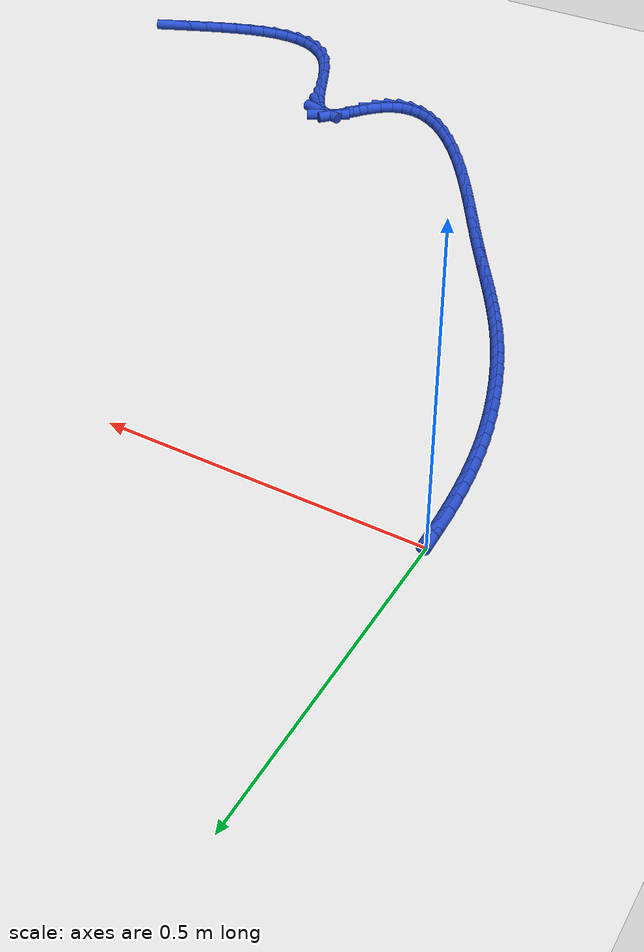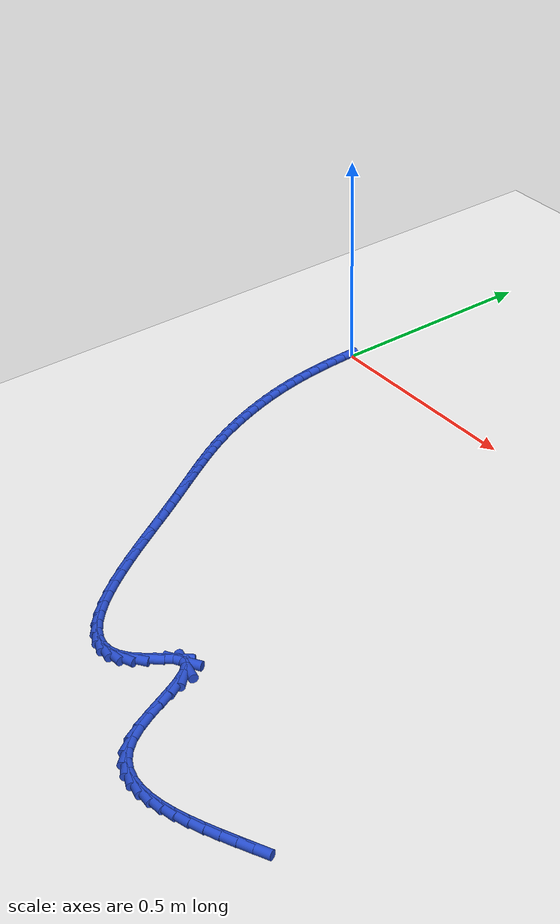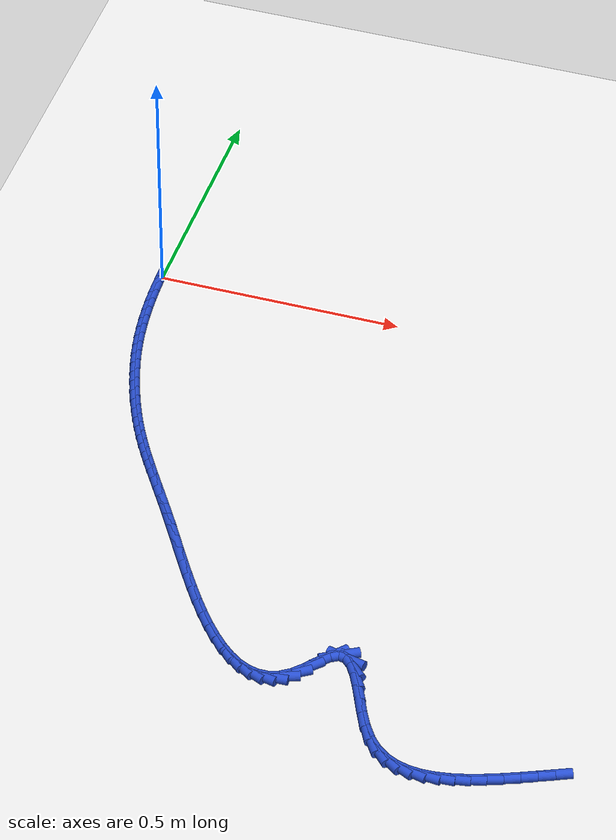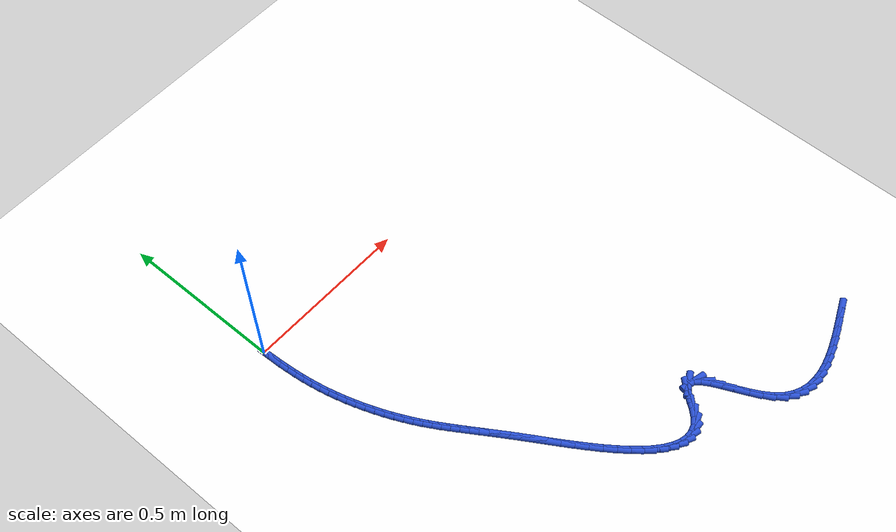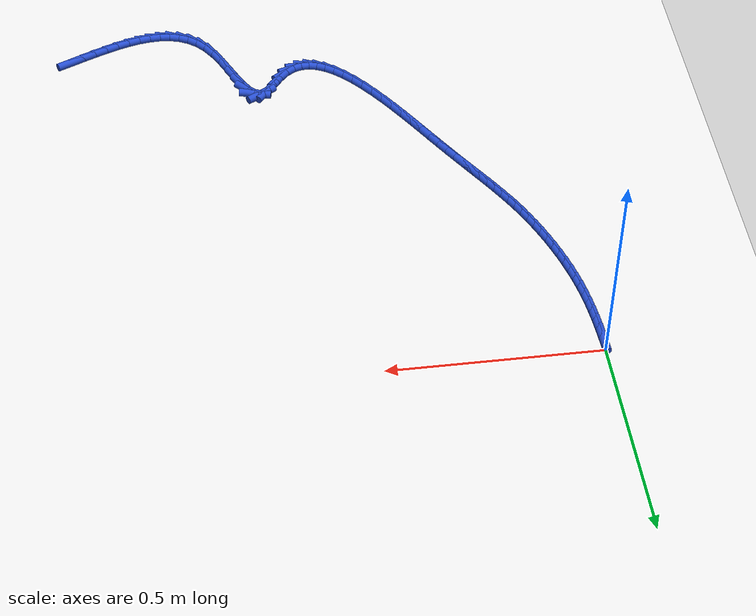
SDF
<sdf version="1.6">
 <world name="default">
  <model name="ground_plane">
   <static>1</static>
   <link name="link">
    <collision name="collision">
     <geometry><plane><normal>0 0 1</normal><size>100 100</size></plane></geometry>
     <surface><friction><ode><mu>100</mu><mu2>50</mu2></ode></friction></surface>
    </collision>
    <visual name="visual">
     <cast_shadows>0</cast_shadows>
     <geometry><plane><normal>0 0 1</normal><size>100 100</size></plane></geometry>
     <material>
      <script><uri>file://media/materials/scripts/gazebo.material</uri><name>Gazebo/WhiteGlow</name></script>
     </material>
    </visual>
   </link>
  </model>
  <model name="line">
   <link name="link_210">
    <pose>1.1411694053998898 -1.1226942872927665 0.01 0 1.57 0.4177175470831091</pose>
    <collision name="collision">
     <geometry><cylinder><radius>0.01</radius><length>0.08</length></cylinder></geometry>
    </collision>
    <visual name="visual">
     <material>
      <script><name>Gazebo/Blue</name><uri>file://media/materials/scripts/gazebo.material</uri></script>
     </material>
     <geometry><cylinder><radius>0.01</radius><length>0.08</length></cylinder></geometry>
    </visual>
   </link>
   <link name="link_211">
    <pose>1.111450560053122 -1.135884631061231 0.01 0 1.57 0.40857994783243407</pose>
    <collision name="collision">
     <geometry><cylinder><radius>0.01</radius><length>0.08</length></cylinder></geometry>
    </collision>
    <visual name="visual">
     <material>
      <script><name>Gazebo/Blue</name><uri>file://media/materials/scripts/gazebo.material</uri></script>
     </material>
     <geometry><cylinder><radius>0.01</radius><length>0.08</length></cylinder></geometry>
    </visual>
   </link>
   <link name="link_212">
    <pose>1.0817129343181457 -1.148759355875677 0.01 0 1.57 0.3877216885121234</pose>
    <collision name="collision">
     <geometry><cylinder><radius>0.01</radius><length>0.08</length></cylinder></geometry>
    </collision>
    <visual name="visual">
     <material>
      <script><name>Gazebo/Blue</name><uri>file://media/materials/scripts/gazebo.material</uri></script>
     </material>
     <geometry><cylinder><radius>0.01</radius><length>0.08</length></cylinder></geometry>
    </visual>
   </link>
   <link name="link_213">
    <pose>1.0521110440956423 -1.160848594180306 0.01 0 1.57 0.3540371202136344</pose>
    <collision name="collision">
     <geometry><cylinder><radius>0.01</radius><length>0.08</length></cylinder></geometry>
    </collision>
    <visual name="visual">
     <material>
      <script><name>Gazebo/Blue</name><uri>file://media/materials/scripts/gazebo.material</uri></script>
     </material>
     <geometry><cylinder><radius>0.01</radius><length>0.08</length></cylinder></geometry>
    </visual>
   </link>
   <link name="link_214">
    <pose>1.0227994052862932 -1.171682478419318 0.01 0 1.57 0.30565231837679</pose>
    <collision name="collision">
     <geometry><cylinder><radius>0.01</radius><length>0.08</length></cylinder></geometry>
    </collision>
    <visual name="visual">
     <material>
      <script><name>Gazebo/Blue</name><uri>file://media/materials/scripts/gazebo.material</uri></script>
     </material>
     <geometry><cylinder><radius>0.01</radius><length>0.08</length></cylinder></geometry>
    </visual>
   </link>
   <link name="link_215">
    <pose>0.9939325337907812 -1.1807911410369147 0.01 0 1.57 0.23986723532234006</pose>
    <collision name="collision">
     <geometry><cylinder><radius>0.01</radius><length>0.08</length></cylinder></geometry>
    </collision>
    <visual name="visual">
     <material>
      <script><name>Gazebo/Blue</name><uri>file://media/materials/scripts/gazebo.material</uri></script>
     </material>
     <geometry><cylinder><radius>0.01</radius><length>0.08</length></cylinder></geometry>
    </visual>
   </link>
   <link name="link_216">
    <pose>0.9656649455097873 -1.1877047144772968 0.01 0 1.57 0.15320763524212622</pose>
    <collision name="collision">
     <geometry><cylinder><radius>0.01</radius><length>0.08</length></cylinder></geometry>
    </collision>
    <visual name="visual">
     <material>
      <script><name>Gazebo/Blue</name><uri>file://media/materials/scripts/gazebo.material</uri></script>
     </material>
     <geometry><cylinder><radius>0.01</radius><length>0.08</length></cylinder></geometry>
    </visual>
   </link>
   <link name="link_217">
    <pose>0.9381511563439934 -1.1919533311846653 0.01 0 1.57 0.04183885024904381</pose>
    <collision name="collision">
     <geometry><cylinder><radius>0.01</radius><length>0.08</length></cylinder></geometry>
    </collision>
    <visual name="visual">
     <material>
      <script><name>Gazebo/Blue</name><uri>file://media/materials/scripts/gazebo.material</uri></script>
     </material>
     <geometry><cylinder><radius>0.01</radius><length>0.08</length></cylinder></geometry>
    </visual>
   </link>
   <link name="link_218">
    <pose>0.9115456821940824 -1.1930671236032202 0.01 0 1.57 -0.09721186645976103</pose>
    <collision name="collision">
     <geometry><cylinder><radius>0.01</radius><length>0.08</length></cylinder></geometry>
    </collision>
    <visual name="visual">
     <material>
      <script><name>Gazebo/Blue</name><uri>file://media/materials/scripts/gazebo.material</uri></script>
     </material>
     <geometry><cylinder><radius>0.01</radius><length>0.08</length></cylinder></geometry>
    </visual>
   </link>
   <link name="link_219">
    <pose>0.8860030389607358 -1.1905762241771638 0.01 0 1.57 -0.26362097659686073</pose>
    <collision name="collision">
     <geometry><cylinder><radius>0.01</radius><length>0.08</length></cylinder></geometry>
    </collision>
    <visual name="visual">
     <material>
      <script><name>Gazebo/Blue</name><uri>file://media/materials/scripts/gazebo.material</uri></script>
     </material>
     <geometry><cylinder><radius>0.01</radius><length>0.08</length></cylinder></geometry>
    </visual>
   </link>
   <link name="link_220">
    <pose>0.8616777425446351 -1.184010765350696 0.01 0 1.57 -0.4507808355596545</pose>
    <collision name="collision">
     <geometry><cylinder><radius>0.01</radius><length>0.08</length></cylinder></geometry>
    </collision>
    <visual name="visual">
     <material>
      <script><name>Gazebo/Blue</name><uri>file://media/materials/scripts/gazebo.material</uri></script>
     </material>
     <geometry><cylinder><radius>0.01</radius><length>0.08</length></cylinder></geometry>
    </visual>
   </link>
   <link name="link_221">
    <pose>0.8387243088464627 -1.1729008795680183 0.01 0 1.57 -0.6451087648986169</pose>
    <collision name="collision">
     <geometry><cylinder><radius>0.01</radius><length>0.08</length></cylinder></geometry>
    </collision>
    <visual name="visual">
     <material>
      <script><name>Gazebo/Blue</name><uri>file://media/materials/scripts/gazebo.material</uri></script>
     </material>
     <geometry><cylinder><radius>0.01</radius><length>0.08</length></cylinder></geometry>
    </visual>
   </link>
   <link name="link_222">
    <pose>0.8172972537668998 -1.156776699273331 0.01 0 1.57 -0.8303974879209606</pose>
    <collision name="collision">
     <geometry><cylinder><radius>0.01</radius><length>0.08</length></cylinder></geometry>
    </collision>
    <visual name="visual">
     <material>
      <script><name>Gazebo/Blue</name><uri>file://media/materials/scripts/gazebo.material</uri></script>
     </material>
     <geometry><cylinder><radius>0.01</radius><length>0.08</length></cylinder></geometry>
    </visual>
   </link>
   <link name="link_223">
    <pose>0.7975510932066288 -1.135168356910835 0.01 0 1.57 -0.9888714584226401</pose>
    <collision name="collision">
     <geometry><cylinder><radius>0.01</radius><length>0.08</length></cylinder></geometry>
    </collision>
    <visual name="visual">
     <material>
      <script><name>Gazebo/Blue</name><uri>file://media/materials/scripts/gazebo.material</uri></script>
     </material>
     <geometry><cylinder><radius>0.01</radius><length>0.08</length></cylinder></geometry>
    </visual>
   </link>
   <link name="link_224">
    <pose>0.77959184070651 -1.107871467272333 0.01 0 1.57 -1.0882916988830322</pose>
    <collision name="collision">
     <geometry><cylinder><radius>0.01</radius><length>0.08</length></cylinder></geometry>
    </collision>
    <visual name="visual">
     <material>
      <script><name>Gazebo/Blue</name><uri>file://media/materials/scripts/gazebo.material</uri></script>
     </material>
     <geometry><cylinder><radius>0.01</radius><length>0.08</length></cylinder></geometry>
    </visual>
   </link>
   <link name="link_225">
    <pose>0.763184566838703 -1.0765478293943058 0.01 0 1.57 -1.1369546409573734</pose>
    <collision name="collision">
     <geometry><cylinder><radius>0.01</radius><length>0.08</length></cylinder></geometry>
    </collision>
    <visual name="visual">
     <material>
      <script><name>Gazebo/Blue</name><uri>file://media/materials/scripts/gazebo.material</uri></script>
     </material>
     <geometry><cylinder><radius>0.01</radius><length>0.08</length></cylinder></geometry>
    </visual>
   </link>
   <link name="link_226">
    <pose>0.7479481265944213 -1.043659567407271 0.01 0 1.57 -1.146569369218268</pose>
    <collision name="collision">
     <geometry><cylinder><radius>0.01</radius><length>0.08</length></cylinder></geometry>
    </collision>
    <visual name="visual">
     <material>
      <script><name>Gazebo/Blue</name><uri>file://media/materials/scripts/gazebo.material</uri></script>
     </material>
     <geometry><cylinder><radius>0.01</radius><length>0.08</length></cylinder></geometry>
    </visual>
   </link>
   <link name="link_227">
    <pose>0.7335008153881647 -1.0116718683389108 0.01 0 1.57 -1.1147544469242732</pose>
    <collision name="collision">
     <geometry><cylinder><radius>0.01</radius><length>0.08</length></cylinder></geometry>
    </collision>
    <visual name="visual">
     <material>
      <script><name>Gazebo/Blue</name><uri>file://media/materials/scripts/gazebo.material</uri></script>
     </material>
     <geometry><cylinder><radius>0.01</radius><length>0.08</length></cylinder></geometry>
    </visual>
   </link>
   <link name="link_228">
    <pose>0.7194609286344309 -0.983049919216904 0.01 0 1.57 -1.019493765633877</pose>
    <collision name="collision">
     <geometry><cylinder><radius>0.01</radius><length>0.08</length></cylinder></geometry>
    </collision>
    <visual name="visual">
     <material>
      <script><name>Gazebo/Blue</name><uri>file://media/materials/scripts/gazebo.material</uri></script>
     </material>
     <geometry><cylinder><radius>0.01</radius><length>0.08</length></cylinder></geometry>
    </visual>
   </link>
   <link name="link_229">
    <pose>0.7054467617477183 -0.9602589070689308 0.01 0 1.57 -0.7897195073379598</pose>
    <collision name="collision">
     <geometry><cylinder><radius>0.01</radius><length>0.08</length></cylinder></geometry>
    </collision>
    <visual name="visual">
     <material>
      <script><name>Gazebo/Blue</name><uri>file://media/materials/scripts/gazebo.material</uri></script>
     </material>
     <geometry><cylinder><radius>0.01</radius><length>0.08</length></cylinder></geometry>
    </visual>
   </link>
   <link name="link_230">
    <pose>0.6910766101425252 -0.9457640189226703 0.01 0 1.57 -0.2422741952883833</pose>
    <collision name="collision">
     <geometry><cylinder><radius>0.01</radius><length>0.08</length></cylinder></geometry>
    </collision>
    <visual name="visual">
     <material>
      <script><name>Gazebo/Blue</name><uri>file://media/materials/scripts/gazebo.material</uri></script>
     </material>
     <geometry><cylinder><radius>0.01</radius><length>0.08</length></cylinder></geometry>
    </visual>
   </link>
   <link name="link_231">
    <pose>0.6759687692333501 -0.9420304418058032 0.01 0 1.57 0.520212359799715</pose>
    <collision name="collision">
     <geometry><cylinder><radius>0.01</radius><length>0.08</length></cylinder></geometry>
    </collision>
    <visual name="visual">
     <material>
      <script><name>Gazebo/Blue</name><uri>file://media/materials/scripts/gazebo.material</uri></script>
     </material>
     <geometry><cylinder><radius>0.01</radius><length>0.08</length></cylinder></geometry>
    </visual>
   </link>
   <link name="link_232">
    <pose>0.6597545279222441 -0.9513186700876006 0.01 0 1.57 0.8532140392529795</pose>
    <collision name="collision">
     <geometry><cylinder><radius>0.01</radius><length>0.08</length></cylinder></geometry>
    </collision>
    <visual name="visual">
     <material>
      <script><name>Gazebo/Blue</name><uri>file://media/materials/scripts/gazebo.material</uri></script>
     </material>
     <geometry><cylinder><radius>0.01</radius><length>0.08</length></cylinder></geometry>
    </visual>
   </link>
   <link name="link_233">
    <pose>0.642359755416982 -0.9712485329080752 0.01 0 1.57 0.909457438979896</pose>
    <collision name="collision">
     <geometry><cylinder><radius>0.01</radius><length>0.08</length></cylinder></geometry>
    </collision>
    <visual name="visual">
     <material>
      <script><name>Gazebo/Blue</name><uri>file://media/materials/scripts/gazebo.material</uri></script>
     </material>
     <geometry><cylinder><radius>0.01</radius><length>0.08</length></cylinder></geometry>
    </visual>
   </link>
   <link name="link_234">
    <pose>0.6240025484074682 -0.9948362593396034 0.01 0 1.57 0.8133861075371812</pose>
    <collision name="collision">
     <geometry><cylinder><radius>0.01</radius><length>0.08</length></cylinder></geometry>
    </collision>
    <visual name="visual">
     <material>
      <script><name>Gazebo/Blue</name><uri>file://media/materials/scripts/gazebo.material</uri></script>
     </material>
     <geometry><cylinder><radius>0.01</radius><length>0.08</length></cylinder></geometry>
    </visual>
   </link>
   <link name="link_235">
    <pose>0.6049110437191255 -1.0150274943150572 0.01 0 1.57 0.592814998486106</pose>
    <collision name="collision">
     <geometry><cylinder><radius>0.01</radius><length>0.08</length></cylinder></geometry>
    </collision>
    <visual name="visual">
     <material>
      <script><name>Gazebo/Blue</name><uri>file://media/materials/scripts/gazebo.material</uri></script>
     </material>
     <geometry><cylinder><radius>0.01</radius><length>0.08</length></cylinder></geometry>
    </visual>
   </link>
   <link name="link_236">
    <pose>0.5852446398481577 -1.0282755771280032 0.01 0 1.57 0.3178228043329984</pose>
    <collision name="collision">
     <geometry><cylinder><radius>0.01</radius><length>0.08</length></cylinder></geometry>
    </collision>
    <visual name="visual">
     <material>
      <script><name>Gazebo/Blue</name><uri>file://media/materials/scripts/gazebo.material</uri></script>
     </material>
     <geometry><cylinder><radius>0.01</radius><length>0.08</length></cylinder></geometry>
    </visual>
   </link>
   <link name="link_237">
    <pose>0.5650868355130736 -1.0349069877960808 0.01 0 1.57 0.026305944095334367</pose>
    <collision name="collision">
     <geometry><cylinder><radius>0.01</radius><length>0.08</length></cylinder></geometry>
    </collision>
    <visual name="visual">
     <material>
      <script><name>Gazebo/Blue</name><uri>file://media/materials/scripts/gazebo.material</uri></script>
     </material>
     <geometry><cylinder><radius>0.01</radius><length>0.08</length></cylinder></geometry>
    </visual>
   </link>
   <link name="link_238">
    <pose>0.5445172099533256 -1.0354482160656844 0.01 0 1.57 -0.23581711629128985</pose>
    <collision name="collision">
     <geometry><cylinder><radius>0.01</radius><length>0.08</length></cylinder></geometry>
    </collision>
    <visual name="visual">
     <material>
      <script><name>Gazebo/Blue</name><uri>file://media/materials/scripts/gazebo.material</uri></script>
     </material>
     <geometry><cylinder><radius>0.01</radius><length>0.08</length></cylinder></geometry>
    </visual>
   </link>
   <link name="link_239">
    <pose>0.5236153424083666 -1.030425751683208 0.01 0 1.57 -0.44388274257624405</pose>
    <collision name="collision">
     <geometry><cylinder><radius>0.01</radius><length>0.08</length></cylinder></geometry>
    </collision>
    <visual name="visual">
     <material>
      <script><name>Gazebo/Blue</name><uri>file://media/materials/scripts/gazebo.material</uri></script>
     </material>
     <geometry><cylinder><radius>0.01</radius><length>0.08</length></cylinder></geometry>
    </visual>
   </link>
   <link name="link_240">
    <pose>0.502460812117649 -1.0203660843950462 0.01 0 1.57 -0.5993409589502638</pose>
    <collision name="collision">
     <geometry><cylinder><radius>0.01</radius><length>0.08</length></cylinder></geometry>
    </collision>
    <visual name="visual">
     <material>
      <script><name>Gazebo/Blue</name><uri>file://media/materials/scripts/gazebo.material</uri></script>
     </material>
     <geometry><cylinder><radius>0.01</radius><length>0.08</length></cylinder></geometry>
    </visual>
   </link>
   <link name="link_241">
    <pose>0.48113319832062584 -1.0057957039475933 0.01 0 1.57 -0.7138143082772822</pose>
    <collision name="collision">
     <geometry><cylinder><radius>0.01</radius><length>0.08</length></cylinder></geometry>
    </collision>
    <visual name="visual">
     <material>
      <script><name>Gazebo/Blue</name><uri>file://media/materials/scripts/gazebo.material</uri></script>
     </material>
     <geometry><cylinder><radius>0.01</radius><length>0.08</length></cylinder></geometry>
    </visual>
   </link>
   <link name="link_242">
    <pose>0.4597120802567494 -0.987241100087244 0.01 0 1.57 -0.798684590730859</pose>
    <collision name="collision">
     <geometry><cylinder><radius>0.01</radius><length>0.08</length></cylinder></geometry>
    </collision>
    <visual name="visual">
     <material>
      <script><name>Gazebo/Blue</name><uri>file://media/materials/scripts/gazebo.material</uri></script>
     </material>
     <geometry><cylinder><radius>0.01</radius><length>0.08</length></cylinder></geometry>
    </visual>
   </link>
   <link name="link_243">
    <pose>0.4382770371654718 -0.9652287625603911 0.01 0 1.57 -0.8624202566831852</pose>
    <collision name="collision">
     <geometry><cylinder><radius>0.01</radius><length>0.08</length></cylinder></geometry>
    </collision>
    <visual name="visual">
     <material>
      <script><name>Gazebo/Blue</name><uri>file://media/materials/scripts/gazebo.material</uri></script>
     </material>
     <geometry><cylinder><radius>0.01</radius><length>0.08</length></cylinder></geometry>
    </visual>
   </link>
   <link name="link_244">
    <pose>0.416907648286247 -0.9402851811134308 0.01 0 1.57 -0.9108196539002665</pose>
    <collision name="collision">
     <geometry><cylinder><radius>0.01</radius><length>0.08</length></cylinder></geometry>
    </collision>
    <visual name="visual">
     <material>
      <script><name>Gazebo/Blue</name><uri>file://media/materials/scripts/gazebo.material</uri></script>
     </material>
     <geometry><cylinder><radius>0.01</radius><length>0.08</length></cylinder></geometry>
    </visual>
   </link>
   <link name="link_245">
    <pose>0.3956834928585271 -0.912936845492757 0.01 0 1.57 -0.9477611680647008</pose>
    <collision name="collision">
     <geometry><cylinder><radius>0.01</radius><length>0.08</length></cylinder></geometry>
    </collision>
    <visual name="visual">
     <material>
      <script><name>Gazebo/Blue</name><uri>file://media/materials/scripts/gazebo.material</uri></script>
     </material>
     <geometry><cylinder><radius>0.01</radius><length>0.08</length></cylinder></geometry>
    </visual>
   </link>
   <link name="link_246">
    <pose>0.37468415012176454 -0.8837102454447633 0.01 0 1.57 -0.975822172109224</pose>
    <collision name="collision">
     <geometry><cylinder><radius>0.01</radius><length>0.08</length></cylinder></geometry>
    </collision>
    <visual name="visual">
     <material>
      <script><name>Gazebo/Blue</name><uri>file://media/materials/scripts/gazebo.material</uri></script>
     </material>
     <geometry><cylinder><radius>0.01</radius><length>0.08</length></cylinder></geometry>
    </visual>
   </link>
   <link name="link_247">
    <pose>0.3539891993154122 -0.853131870715845 0.01 0 1.57 -0.9966943302735146</pose>
    <collision name="collision">
     <geometry><cylinder><radius>0.01</radius><length>0.08</length></cylinder></geometry>
    </collision>
    <visual name="visual">
     <material>
      <script><name>Gazebo/Blue</name><uri>file://media/materials/scripts/gazebo.material</uri></script>
     </material>
     <geometry><cylinder><radius>0.01</radius><length>0.08</length></cylinder></geometry>
    </visual>
   </link>
   <link name="link_248">
    <pose>0.33367821967892247 -0.8217282110523952 0.01 0 1.57 -1.0114398784732777</pose>
    <collision name="collision">
     <geometry><cylinder><radius>0.01</radius><length>0.08</length></cylinder></geometry>
    </collision>
    <visual name="visual">
     <material>
      <script><name>Gazebo/Blue</name><uri>file://media/materials/scripts/gazebo.material</uri></script>
     </material>
     <geometry><cylinder><radius>0.01</radius><length>0.08</length></cylinder></geometry>
    </visual>
   </link>
   <link name="link_249">
    <pose>0.3138307904517482 -0.7900257562008095 0.01 0 1.57 -1.0206356271190022</pose>
    <collision name="collision">
     <geometry><cylinder><radius>0.01</radius><length>0.08</length></cylinder></geometry>
    </collision>
    <visual name="visual">
     <material>
      <script><name>Gazebo/Blue</name><uri>file://media/materials/scripts/gazebo.material</uri></script>
     </material>
     <geometry><cylinder><radius>0.01</radius><length>0.08</length></cylinder></geometry>
    </visual>
   </link>
   <link name="link_250">
    <pose>0.29452649087334215 -0.7585509959074815 0.01 0 1.57 -1.0244325157032539</pose>
    <collision name="collision">
     <geometry><cylinder><radius>0.01</radius><length>0.08</length></cylinder></geometry>
    </collision>
    <visual name="visual">
     <material>
      <script><name>Gazebo/Blue</name><uri>file://media/materials/scripts/gazebo.material</uri></script>
     </material>
     <geometry><cylinder><radius>0.01</radius><length>0.08</length></cylinder></geometry>
    </visual>
   </link>
   <link name="link_251">
    <pose>0.2758449001831566 -0.7278304199188055 0.01 0 1.57 -1.0225375357573605</pose>
    <collision name="collision">
     <geometry><cylinder><radius>0.01</radius><length>0.08</length></cylinder></geometry>
    </collision>
    <visual name="visual">
     <material>
      <script><name>Gazebo/Blue</name><uri>file://media/materials/scripts/gazebo.material</uri></script>
     </material>
     <geometry><cylinder><radius>0.01</radius><length>0.08</length></cylinder></geometry>
    </visual>
   </link>
   <link name="link_252">
    <pose>0.257865597620644 -0.6983905179811751 0.01 0 1.57 -1.01523195357115</pose>
    <collision name="collision">
     <geometry><cylinder><radius>0.01</radius><length>0.08</length></cylinder></geometry>
    </collision>
    <visual name="visual">
     <material>
      <script><name>Gazebo/Blue</name><uri>file://media/materials/scripts/gazebo.material</uri></script>
     </material>
     <geometry><cylinder><radius>0.01</radius><length>0.08</length></cylinder></geometry>
    </visual>
   </link>
   <link name="link_253">
    <pose>0.24065385462135822 -0.6706648587310945 0.01 0 1.57 -1.0079618289823404</pose>
    <collision name="collision">
     <geometry><cylinder><radius>0.01</radius><length>0.08</length></cylinder></geometry>
    </collision>
    <visual name="visual">
     <material>
      <script><name>Gazebo/Blue</name><uri>file://media/materials/scripts/gazebo.material</uri></script>
     </material>
     <geometry><cylinder><radius>0.01</radius><length>0.08</length></cylinder></geometry>
    </visual>
   </link>
   <link name="link_254">
    <pose>0.22419690413941676 -0.6445801949191291 0.01 0 1.57 -1.003193781858532</pose>
    <collision name="collision">
     <geometry><cylinder><radius>0.01</radius><length>0.08</length></cylinder></geometry>
    </collision>
    <visual name="visual">
     <material>
      <script><name>Gazebo/Blue</name><uri>file://media/materials/scripts/gazebo.material</uri></script>
     </material>
     <geometry><cylinder><radius>0.01</radius><length>0.08</length></cylinder></geometry>
    </visual>
   </link>
   <link name="link_255">
    <pose>0.20845550408169972 -0.6198913388086082 0.01 0 1.57 -1.001466475466912</pose>
    <collision name="collision">
     <geometry><cylinder><radius>0.01</radius><length>0.08</length></cylinder></geometry>
    </collision>
    <visual name="visual">
     <material>
      <script><name>Gazebo/Blue</name><uri>file://media/materials/scripts/gazebo.material</uri></script>
     </material>
     <geometry><cylinder><radius>0.01</radius><length>0.08</length></cylinder></geometry>
    </visual>
   </link>
   <link name="link_256">
    <pose>0.19339039087322182 -0.5963529631502743 0.01 0 1.57 -1.003277217881256</pose>
    <collision name="collision">
     <geometry><cylinder><radius>0.01</radius><length>0.08</length></cylinder></geometry>
    </collision>
    <visual name="visual">
     <material>
      <script><name>Gazebo/Blue</name><uri>file://media/materials/scripts/gazebo.material</uri></script>
     </material>
     <geometry><cylinder><radius>0.01</radius><length>0.08</length></cylinder></geometry>
    </visual>
   </link>
   <link name="link_257">
    <pose>0.1789623009389983 -0.5737197406948703 0.01 0 1.57 -1.0090302746798883</pose>
    <collision name="collision">
     <geometry><cylinder><radius>0.01</radius><length>0.08</length></cylinder></geometry>
    </collision>
    <visual name="visual">
     <material>
      <script><name>Gazebo/Blue</name><uri>file://media/materials/scripts/gazebo.material</uri></script>
     </material>
     <geometry><cylinder><radius>0.01</radius><length>0.08</length></cylinder></geometry>
    </visual>
   </link>
   <link name="link_258">
    <pose>0.16513197070404406 -0.5517463441931387 0.01 0 1.57 -1.018979194893071</pose>
    <collision name="collision">
     <geometry><cylinder><radius>0.01</radius><length>0.08</length></cylinder></geometry>
    </collision>
    <visual name="visual">
     <material>
      <script><name>Gazebo/Blue</name><uri>file://media/materials/scripts/gazebo.material</uri></script>
     </material>
     <geometry><cylinder><radius>0.01</radius><length>0.08</length></cylinder></geometry>
    </visual>
   </link>
   <link name="link_259">
    <pose>0.15186013659337422 -0.5301874463958226 0.01 0 1.57 -1.0331740176845208</pose>
    <collision name="collision">
     <geometry><cylinder><radius>0.01</radius><length>0.08</length></cylinder></geometry>
    </collision>
    <visual name="visual">
     <material>
      <script><name>Gazebo/Blue</name><uri>file://media/materials/scripts/gazebo.material</uri></script>
     </material>
     <geometry><cylinder><radius>0.01</radius><length>0.08</length></cylinder></geometry>
    </visual>
   </link>
   <link name="link_260">
    <pose>0.13910753503200377 -0.5087977200536645 0.01 0 1.57 -1.0514249846601267</pose>
    <collision name="collision">
     <geometry><cylinder><radius>0.01</radius><length>0.08</length></cylinder></geometry>
    </collision>
    <visual name="visual">
     <material>
      <script><name>Gazebo/Blue</name><uri>file://media/materials/scripts/gazebo.material</uri></script>
     </material>
     <geometry><cylinder><radius>0.01</radius><length>0.08</length></cylinder></geometry>
    </visual>
   </link>
   <link name="link_261">
    <pose>0.1268349024449473 -0.4873318379174064 0.01 0 1.57 -1.0732940815479293</pose>
    <collision name="collision">
     <geometry><cylinder><radius>0.01</radius><length>0.08</length></cylinder></geometry>
    </collision>
    <visual name="visual">
     <material>
      <script><name>Gazebo/Blue</name><uri>file://media/materials/scripts/gazebo.material</uri></script>
     </material>
     <geometry><cylinder><radius>0.01</radius><length>0.08</length></cylinder></geometry>
    </visual>
   </link>
   <link name="link_262">
    <pose>0.11500297525722071 -0.4655444727377926 0.01 0 1.57 -1.0981214290005308</pose>
    <collision name="collision">
     <geometry><cylinder><radius>0.01</radius><length>0.08</length></cylinder></geometry>
    </collision>
    <visual name="visual">
     <material>
      <script><name>Gazebo/Blue</name><uri>file://media/materials/scripts/gazebo.material</uri></script>
     </material>
     <geometry><cylinder><radius>0.01</radius><length>0.08</length></cylinder></geometry>
    </visual>
   </link>
   <link name="link_263">
    <pose>0.10357248989383856 -0.44319029726556497 0.01 0 1.57 -1.124999688403733</pose>
    <collision name="collision">
     <geometry><cylinder><radius>0.01</radius><length>0.08</length></cylinder></geometry>
    </collision>
    <visual name="visual">
     <material>
      <script><name>Gazebo/Blue</name><uri>file://media/materials/scripts/gazebo.material</uri></script>
     </material>
     <geometry><cylinder><radius>0.01</radius><length>0.08</length></cylinder></geometry>
    </visual>
   </link>
   <link name="link_264">
    <pose>0.09250782263491003 -0.42003671092162864 0.01 0 1.57 -1.1520051924645764</pose>
    <collision name="collision">
     <geometry><cylinder><radius>0.01</radius><length>0.08</length></cylinder></geometry>
    </collision>
    <visual name="visual">
     <material>
      <script><name>Gazebo/Blue</name><uri>file://media/materials/scripts/gazebo.material</uri></script>
     </material>
     <geometry><cylinder><radius>0.01</radius><length>0.08</length></cylinder></geometry>
    </visual>
   </link>
   <link name="link_265">
    <pose>0.08182925240741863 -0.39604657545425237 0.01 0 1.57 -1.178342905396653</pose>
    <collision name="collision">
     <geometry><cylinder><radius>0.01</radius><length>0.08</length></cylinder></geometry>
    </collision>
    <visual name="visual">
     <material>
      <script><name>Gazebo/Blue</name><uri>file://media/materials/scripts/gazebo.material</uri></script>
     </material>
     <geometry><cylinder><radius>0.01</radius><length>0.08</length></cylinder></geometry>
    </visual>
   </link>
   <link name="link_266">
    <pose>0.07160084049559917 -0.3713358366233626 0.01 0 1.57 -1.204383157796531</pose>
    <collision name="collision">
     <geometry><cylinder><radius>0.01</radius><length>0.08</length></cylinder></geometry>
    </collision>
    <visual name="visual">
     <material>
      <script><name>Gazebo/Blue</name><uri>file://media/materials/scripts/gazebo.material</uri></script>
     </material>
     <geometry><cylinder><radius>0.01</radius><length>0.08</length></cylinder></geometry>
    </visual>
   </link>
   <link name="link_267">
    <pose>0.06188781850841708 -0.3460245322025637 0.01 0 1.57 -1.2304904158530687</pose>
    <collision name="collision">
     <geometry><cylinder><radius>0.01</radius><length>0.08</length></cylinder></geometry>
    </collision>
    <visual name="visual">
     <material>
      <script><name>Gazebo/Blue</name><uri>file://media/materials/scripts/gazebo.material</uri></script>
     </material>
     <geometry><cylinder><radius>0.01</radius><length>0.08</length></cylinder></geometry>
    </visual>
   </link>
   <link name="link_268">
    <pose>0.05275541805483775 -0.32023269996545917 0.01 0 1.57 -1.2570126195923277</pose>
    <collision name="collision">
     <geometry><cylinder><radius>0.01</radius><length>0.08</length></cylinder></geometry>
    </collision>
    <visual name="visual">
     <material>
      <script><name>Gazebo/Blue</name><uri>file://media/materials/scripts/gazebo.material</uri></script>
     </material>
     <geometry><cylinder><radius>0.01</radius><length>0.08</length></cylinder></geometry>
    </visual>
   </link>
   <link name="link_269">
    <pose>0.04426887074382654 -0.29408037768565304 0.01 0 1.57 -1.2842957234745167</pose>
    <collision name="collision">
     <geometry><cylinder><radius>0.01</radius><length>0.08</length></cylinder></geometry>
    </collision>
    <visual name="visual">
     <material>
      <script><name>Gazebo/Blue</name><uri>file://media/materials/scripts/gazebo.material</uri></script>
     </material>
     <geometry><cylinder><radius>0.01</radius><length>0.08</length></cylinder></geometry>
    </visual>
   </link>
   <link name="link_270">
    <pose>0.0364934081843486 -0.26768760313674833 0.01 0 1.57 -1.312697047412284</pose>
    <collision name="collision">
     <geometry><cylinder><radius>0.01</radius><length>0.08</length></cylinder></geometry>
    </collision>
    <visual name="visual">
     <material>
      <script><name>Gazebo/Blue</name><uri>file://media/materials/scripts/gazebo.material</uri></script>
     </material>
     <geometry><cylinder><radius>0.01</radius><length>0.08</length></cylinder></geometry>
    </visual>
   </link>
   <link name="link_271">
    <pose>0.029494261985369804 -0.24117441409235058 0.01 0 1.57 -1.3425848575863493</pose>
    <collision name="collision">
     <geometry><cylinder><radius>0.01</radius><length>0.08</length></cylinder></geometry>
    </collision>
    <visual name="visual">
     <material>
      <script><name>Gazebo/Blue</name><uri>file://media/materials/scripts/gazebo.material</uri></script>
     </material>
     <geometry><cylinder><radius>0.01</radius><length>0.08</length></cylinder></geometry>
    </visual>
   </link>
   <link name="link_272">
    <pose>0.023336105712591454 -0.2146600732803903 0.01 0 1.57 -1.3732091441426937</pose>
    <collision name="collision">
     <geometry><cylinder><radius>0.01</radius><length>0.08</length></cylinder></geometry>
    </collision>
    <visual name="visual">
     <material>
      <script><name>Gazebo/Blue</name><uri>file://media/materials/scripts/gazebo.material</uri></script>
     </material>
     <geometry><cylinder><radius>0.01</radius><length>0.08</length></cylinder></geometry>
    </visual>
   </link>
   <link name="link_273">
    <pose>0.018039269405079442 -0.1882022563428941 0.01 0 1.57 -1.4026009345099673</pose>
    <collision name="collision">
     <geometry><cylinder><radius>0.01</radius><length>0.08</length></cylinder></geometry>
    </collision>
    <visual name="visual">
     <material>
      <script><name>Gazebo/Blue</name><uri>file://media/materials/scripts/gazebo.material</uri></script>
     </material>
     <geometry><cylinder><radius>0.01</radius><length>0.08</length></cylinder></geometry>
    </visual>
   </link>
   <link name="link_274">
    <pose>0.01354824968652427 -0.16175331669288476 0.01 0 1.57 -1.4302788919334501</pose>
    <collision name="collision">
     <geometry><cylinder><radius>0.01</radius><length>0.08</length></cylinder></geometry>
    </collision>
    <visual name="visual">
     <material>
      <script><name>Gazebo/Blue</name><uri>file://media/materials/scripts/gazebo.material</uri></script>
     </material>
     <geometry><cylinder><radius>0.01</radius><length>0.08</length></cylinder></geometry>
    </visual>
   </link>
   <link name="link_275">
    <pose>0.009800112990081529 -0.13525528822625424 0.01 0 1.57 -1.4559801860243535</pose>
    <collision name="collision">
     <geometry><cylinder><radius>0.01</radius><length>0.08</length></cylinder></geometry>
    </collision>
    <visual name="visual">
     <material>
      <script><name>Gazebo/Blue</name><uri>file://media/materials/scripts/gazebo.material</uri></script>
     </material>
     <geometry><cylinder><radius>0.01</radius><length>0.08</length></cylinder></geometry>
    </visual>
   </link>
   <link name="link_276">
    <pose>0.00673192574890681 -0.10865020483889447 0.01 0 1.57 -1.479487177386278</pose>
    <collision name="collision">
     <geometry><cylinder><radius>0.01</radius><length>0.08</length></cylinder></geometry>
    </collision>
    <visual name="visual">
     <material>
      <script><name>Gazebo/Blue</name><uri>file://media/materials/scripts/gazebo.material</uri></script>
     </material>
     <geometry><cylinder><radius>0.01</radius><length>0.08</length></cylinder></geometry>
    </visual>
   </link>
   <link name="link_277">
    <pose>0.004280754396155706 -0.08188010042669731 0.01 0 1.57 -1.500631159252083</pose>
    <collision name="collision">
     <geometry><cylinder><radius>0.01</radius><length>0.08</length></cylinder></geometry>
    </collision>
    <visual name="visual">
     <material>
      <script><name>Gazebo/Blue</name><uri>file://media/materials/scripts/gazebo.material</uri></script>
     </material>
     <geometry><cylinder><radius>0.01</radius><length>0.08</length></cylinder></geometry>
    </visual>
   </link>
   <link name="link_278">
    <pose>0.0023836653649838093 -0.054887008885554686 0.01 0 1.57 -1.5192932603523606</pose>
    <collision name="collision">
     <geometry><cylinder><radius>0.01</radius><length>0.08</length></cylinder></geometry>
    </collision>
    <visual name="visual">
     <material>
      <script><name>Gazebo/Blue</name><uri>file://media/materials/scripts/gazebo.material</uri></script>
     </material>
     <geometry><cylinder><radius>0.01</radius><length>0.08</length></cylinder></geometry>
    </visual>
   </link>
   <link name="link_279">
    <pose>0.0009777250885466755 -0.02761296411135766 0.01 0 1.57 -1.5354029229079156</pose>
    <collision name="collision">
     <geometry><cylinder><radius>0.01</radius><length>0.08</length></cylinder></geometry>
    </collision>
    <visual name="visual">
     <material>
      <script><name>Gazebo/Blue</name><uri>file://media/materials/scripts/gazebo.material</uri></script>
     </material>
     <geometry><cylinder><radius>0.01</radius><length>0.08</length></cylinder></geometry>
    </visual>
   </link>
  </model>
 </world>
</sdf>
